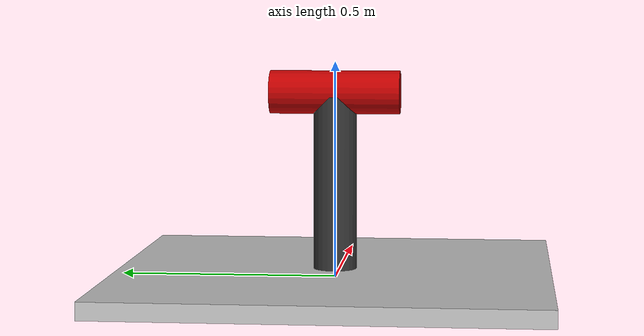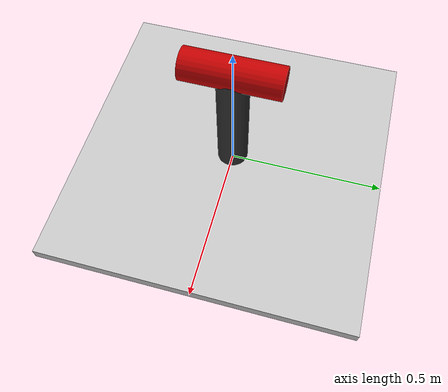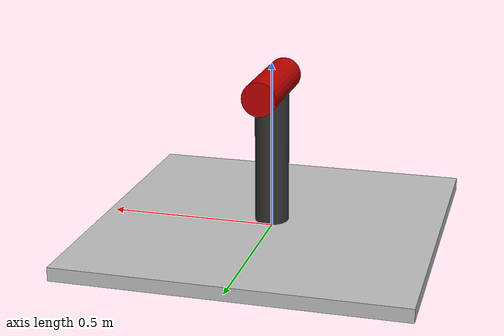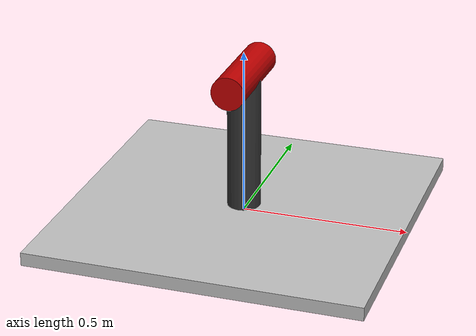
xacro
<?xml version="1.0" ?>
<robot name="sagal_pan_tilt" xmlns:xacro="http://ros.org/wiki/xacro">
    <material name="black">
        <color rgba="0.2 0.2 0.2 1"/>
    </material>
    <material name="grey">
        <color rgba="0.75 0.75 0.75 1"/>
    </material>
    <material name="red">
        <color rgba="0.75 0.0 0.0 1"/>
    </material>
    <link name="base_link">
        <visual>
            <geometry>
                <box size="1 1 0.04"/>
            </geometry>
            <origin xyz="0 0 0" rpy="0 0 0"/>
            <material name="grey"/>
        </visual>
        <collision>
            <geometry>
                <box size="1 1 0.04"/>
            </geometry>
            <origin xyz="0 0 0" rpy="0 0 0"/>
        </collision>
        <inertial>
            <mass value="0.25" />
            <origin xyz="0 0 0.013" rpy="0 0 0"/>
            <inertia ixx="8.34666666666667" ixy="0.0" ixz="0.0"
                iyy="8.34666666666667" iyz="0.0"
                izz="16.6666666666667" />
            </inertial>
    </link>
    <joint name="snake_joint" type="revolute">
        <axis xyz="0 0 1"/>
        <parent link="base_link"/>
        <child link="column_link"/>
        <origin xyz="0 0 0.02" rpy="0 0 0"/>
        <limit effort="300" velocity="1" lower="-1.5707" upper="1.5707"/>
        <dynamics damping="50" friction="1"/>
    </joint>
    <link name="column_link">
        <visual>
            <geometry>
                <cylinder length="0.4" radius="0.05"/>
            </geometry>
            <origin xyz="0 0 0.2" rpy="0 0 0"/>
            <material name="black"/>
        </visual>
        <collision>
            <geometry>
                <cylinder length="0.1" radius="0.1"/>
            </geometry>
            <origin xyz="0 0 0.05" rpy="0 0 0"/>
        </collision>
        <inertial>
            <mass value="0.5" />
            <origin xyz="0 0 0.05" rpy="0 0 0"/>
            <inertia ixx="0.016666666666667" ixy="0.0" ixz="0.0"
                    iyy="0.016666666666667" iyz="0.0"
                    izz="0.025" />
        </inertial>
    </link>
    <joint name="scorpion_joint" type="revolute">
        <axis xyz="1 0 0"/>
        <parent link="column_link"/>
        <child link="tilt_link"/>
        <origin xyz="0 0 0.4" rpy="0 0 0"/>
        <limit effort="300" velocity="1" lower="-1.5707" upper="1.5707"/>
        <dynamics damping="50" friction="1"/>
    </joint>
    <link name="tilt_link">
        <visual>
            <geometry>
                <cylinder length="0.3" radius="0.05"/>
            </geometry>
            <origin xyz="0 0 0.01" rpy="1.5707 0 0"/>
            <material name="red"/>
        </visual>
        <collision>
            <geometry>
                <cylinder length="0.3" radius="0.05"/>
            </geometry>
            <origin xyz="0 0 0.05" rpy="0 0 0"/>
        </collision>
        <inertial>
            <mass value="0.5" />
            <origin xyz="0 0 0.05" rpy="0 0 0"/>
            <inertia ixx="0.016666666666667" ixy="0.0" ixz="0.0"
                    iyy="0.016666666666667" iyz="0.0"
                    izz="0.025" />
        </inertial>
    </link>

</robot>
